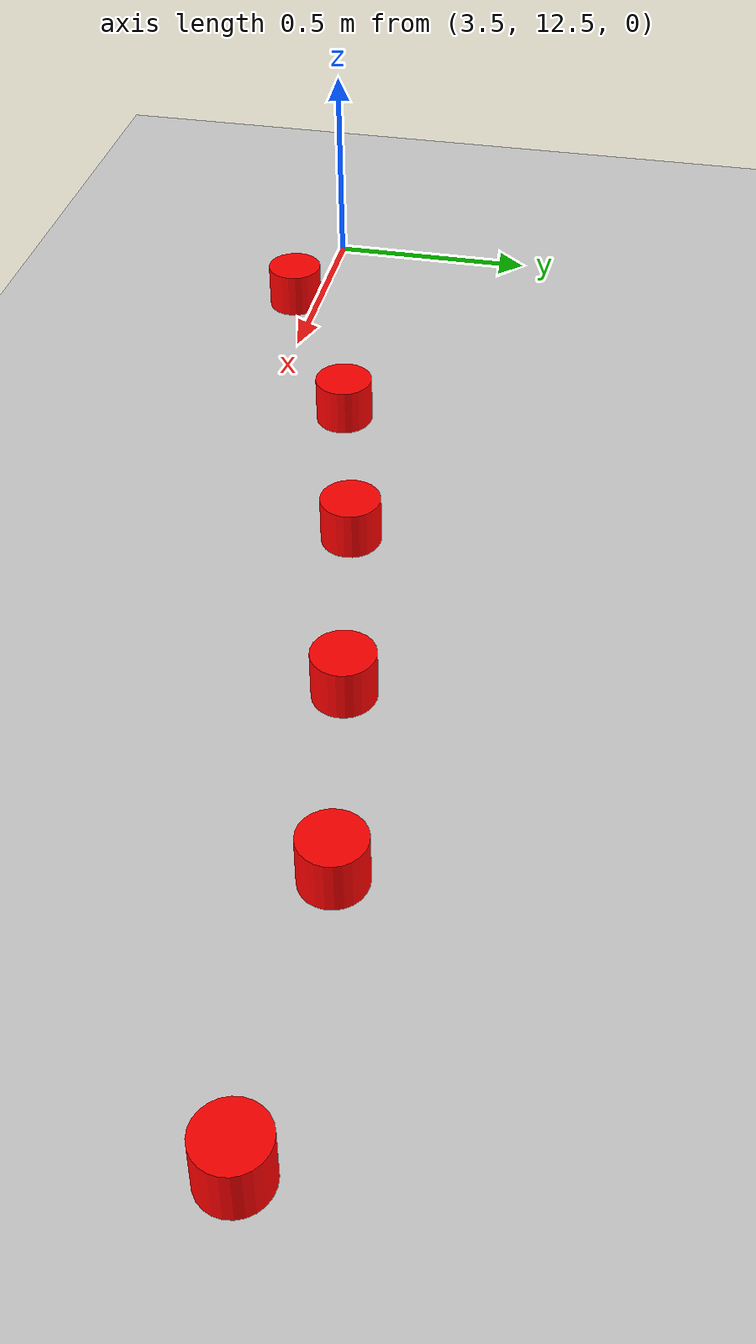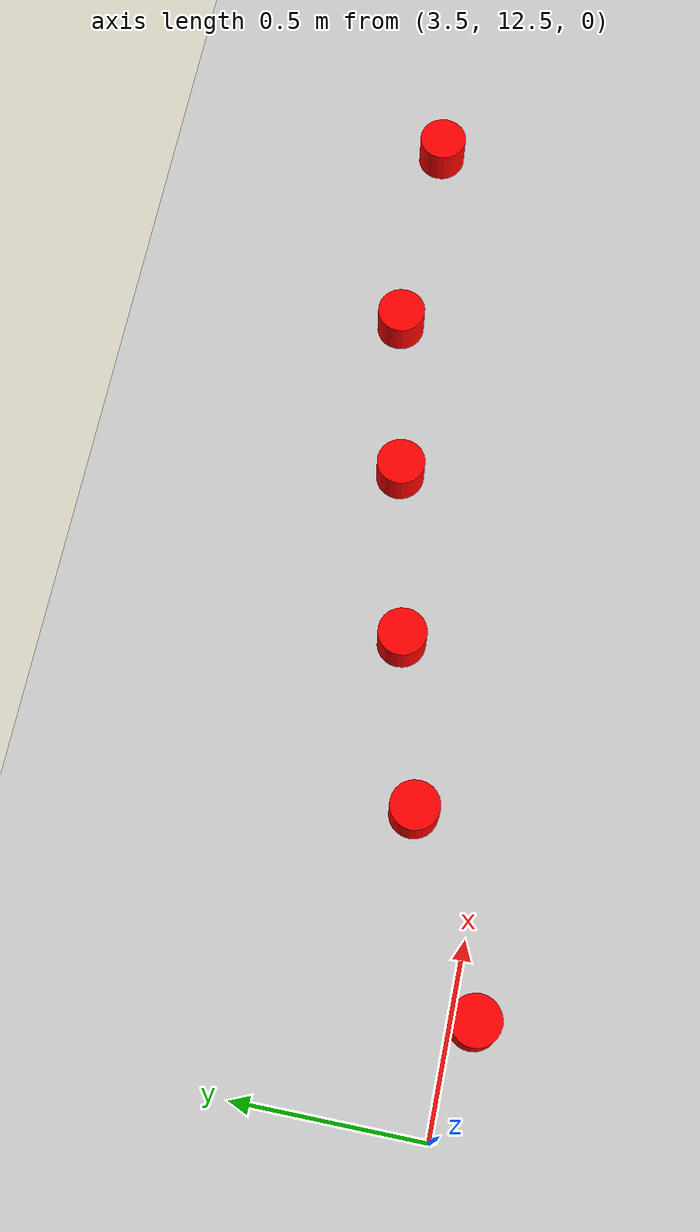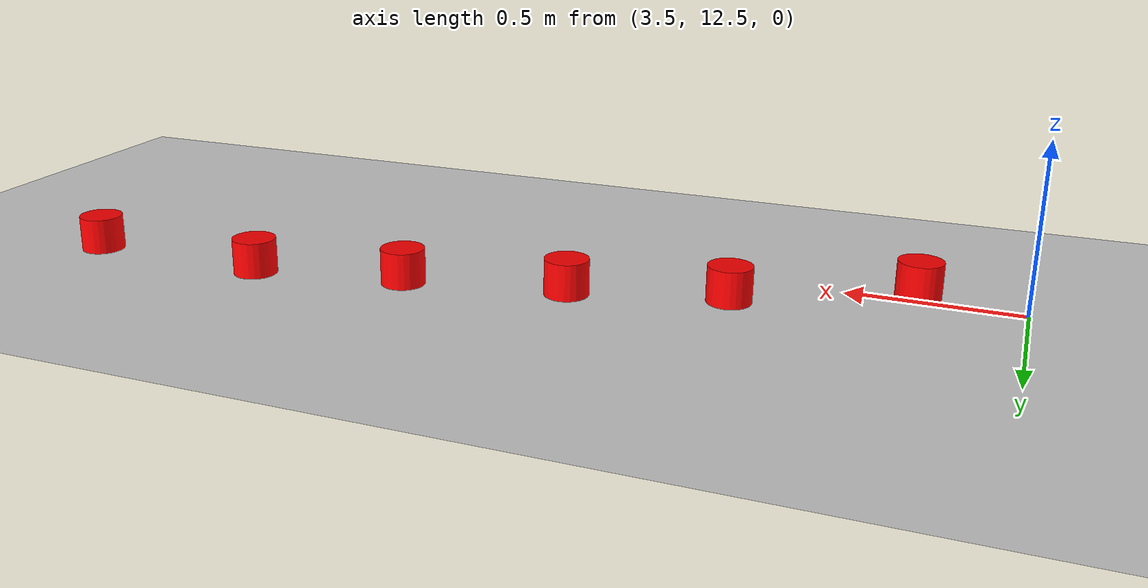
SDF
<sdf version="1.7">
 <world name="default">
  <model name="ground_plane">
   <static>1</static>
   <link name="link">
    <collision name="collision">
     <geometry><plane><normal>0 0 1</normal><size>100 100</size></plane></geometry>
     <surface>
      <contact><collide_bitmask>65535</collide_bitmask></contact>
      <friction><ode><mu>100</mu><mu2>50</mu2></ode></friction>
     </surface>
    </collision>
    <visual name="visual">
     <cast_shadows>0</cast_shadows>
     <geometry><plane><normal>0 0 1</normal><size>100 100</size></plane></geometry>
     <material>
      <script><uri>file://media/materials/scripts/gazebo.material</uri><name>Gazebo/Grey</name></script>
     </material>
    </visual>
   </link>
  </model>
  <model name="latinha_verm_clone_5_clone_0_clone_clone_7_clone_3_clone_3">
   <link name="link">
    <inertial>
     <mass>1</mass>
     <inertia><ixx>0.145833</ixx><ixy>0</ixy><ixz>0</ixz><iyy>0.145833</iyy><iyz>0</iyz><izz>0.125</izz></inertia>
    </inertial>
    <visual name="visual">
     <geometry><cylinder><radius>0.066</radius><length>0.114</length></cylinder></geometry>
     <material>
      <script><name>Gazebo/Gray</name><uri>file://media/materials/scripts/gazebo.material</uri></script>
      <shader type="pixel"><normal_map>__default__</normal_map></shader>
      <ambient>1 0 0 1</ambient>
      <diffuse>1 0 0 1</diffuse>
      <specular>0.1 0.1 0.1 1</specular>
      <emissive>0 0 0 1</emissive>
     </material>
    </visual>
    <collision name="collision">
     <geometry><cylinder><radius>0.05</radius><length>0.1</length></cylinder></geometry>
     <surface>
      <friction>
       <ode><mu>1</mu><mu2>1</mu2><fdir1>0 0 0</fdir1><slip1>0</slip1><slip2>0</slip2></ode>
       <torsional>
        <coefficient>1</coefficient>
        <patch_radius>0</patch_radius>
        <surface_radius>0</surface_radius>
        <use_patch_radius>1</use_patch_radius>
        <ode><slip>0</slip></ode>
       </torsional>
      </friction>
      <bounce><restitution_coefficient>0</restitution_coefficient><threshold>1e+06</threshold></bounce>
      <contact>
       <collide_without_contact>0</collide_without_contact>
       <collide_without_contact_bitmask>1</collide_without_contact_bitmask>
       <collide_bitmask>1</collide_bitmask>
       <ode>
        <soft_cfm>0</soft_cfm>
        <soft_erp>0.2</soft_erp>
        <kp>1e+13</kp>
        <kd>1</kd>
        <max_vel>0.01</max_vel>
        <min_depth>0</min_depth>
       </ode>
       <bullet>
        <split_impulse>1</split_impulse>
        <split_impulse_penetration_threshold>-0.01</split_impulse_penetration_threshold>
        <soft_cfm>0</soft_cfm>
        <soft_erp>0.2</soft_erp>
        <kp>1e+13</kp>
        <kd>1</kd>
       </bullet>
      </contact>
     </surface>
    </collision>
   </link>
   <static>0</static>
   <pose>6.25732 12.9791 0.049996 0 -0 2.9e-05</pose>
  </model>
  <model name="latinha_verm_clone_5_clone_0_clone_clone_7_clone_3_clone_4">
   <link name="link">
    <inertial>
     <mass>1</mass>
     <inertia><ixx>0.145833</ixx><ixy>0</ixy><ixz>0</ixz><iyy>0.145833</iyy><iyz>0</iyz><izz>0.125</izz></inertia>
    </inertial>
    <visual name="visual">
     <geometry><cylinder><radius>0.066</radius><length>0.114</length></cylinder></geometry>
     <material>
      <script><name>Gazebo/Gray</name><uri>file://media/materials/scripts/gazebo.material</uri></script>
      <shader type="pixel"><normal_map>__default__</normal_map></shader>
      <ambient>1 0 0 1</ambient>
      <diffuse>1 0 0 1</diffuse>
      <specular>0.1 0.1 0.1 1</specular>
      <emissive>0 0 0 1</emissive>
     </material>
    </visual>
    <collision name="collision">
     <geometry><cylinder><radius>0.05</radius><length>0.1</length></cylinder></geometry>
     <surface>
      <friction>
       <ode><mu>1</mu><mu2>1</mu2><fdir1>0 0 0</fdir1><slip1>0</slip1><slip2>0</slip2></ode>
       <torsional>
        <coefficient>1</coefficient>
        <patch_radius>0</patch_radius>
        <surface_radius>0</surface_radius>
        <use_patch_radius>1</use_patch_radius>
        <ode><slip>0</slip></ode>
       </torsional>
      </friction>
      <bounce><restitution_coefficient>0</restitution_coefficient><threshold>1e+06</threshold></bounce>
      <contact>
       <collide_without_contact>0</collide_without_contact>
       <collide_without_contact_bitmask>1</collide_without_contact_bitmask>
       <collide_bitmask>1</collide_bitmask>
       <ode>
        <soft_cfm>0</soft_cfm>
        <soft_erp>0.2</soft_erp>
        <kp>1e+13</kp>
        <kd>1</kd>
        <max_vel>0.01</max_vel>
        <min_depth>0</min_depth>
       </ode>
       <bullet>
        <split_impulse>1</split_impulse>
        <split_impulse_penetration_threshold>-0.01</split_impulse_penetration_threshold>
        <soft_cfm>0</soft_cfm>
        <soft_erp>0.2</soft_erp>
        <kp>1e+13</kp>
        <kd>1</kd>
       </bullet>
      </contact>
     </surface>
    </collision>
   </link>
   <static>0</static>
   <pose>5.67675 12.9911 0.049996 0 -0 2.9e-05</pose>
  </model>
  <model name="latinha_verm_clone_5_clone_0_clone_clone_7_clone_3_clone_5">
   <link name="link">
    <inertial>
     <mass>1</mass>
     <inertia><ixx>0.145833</ixx><ixy>0</ixy><ixz>0</ixz><iyy>0.145833</iyy><iyz>0</iyz><izz>0.125</izz></inertia>
    </inertial>
    <visual name="visual">
     <geometry><cylinder><radius>0.066</radius><length>0.114</length></cylinder></geometry>
     <material>
      <script><name>Gazebo/Gray</name><uri>file://media/materials/scripts/gazebo.material</uri></script>
      <shader type="pixel"><normal_map>__default__</normal_map></shader>
      <ambient>1 0 0 1</ambient>
      <diffuse>1 0 0 1</diffuse>
      <specular>0.1 0.1 0.1 1</specular>
      <emissive>0 0 0 1</emissive>
     </material>
    </visual>
    <collision name="collision">
     <geometry><cylinder><radius>0.05</radius><length>0.1</length></cylinder></geometry>
     <surface>
      <friction>
       <ode><mu>1</mu><mu2>1</mu2><fdir1>0 0 0</fdir1><slip1>0</slip1><slip2>0</slip2></ode>
       <torsional>
        <coefficient>1</coefficient>
        <patch_radius>0</patch_radius>
        <surface_radius>0</surface_radius>
        <use_patch_radius>1</use_patch_radius>
        <ode><slip>0</slip></ode>
       </torsional>
      </friction>
      <bounce><restitution_coefficient>0</restitution_coefficient><threshold>1e+06</threshold></bounce>
      <contact>
       <collide_without_contact>0</collide_without_contact>
       <collide_without_contact_bitmask>1</collide_without_contact_bitmask>
       <collide_bitmask>1</collide_bitmask>
       <ode>
        <soft_cfm>0</soft_cfm>
        <soft_erp>0.2</soft_erp>
        <kp>1e+13</kp>
        <kd>1</kd>
        <max_vel>0.01</max_vel>
        <min_depth>0</min_depth>
       </ode>
       <bullet>
        <split_impulse>1</split_impulse>
        <split_impulse_penetration_threshold>-0.01</split_impulse_penetration_threshold>
        <soft_cfm>0</soft_cfm>
        <soft_erp>0.2</soft_erp>
        <kp>1e+13</kp>
        <kd>1</kd>
       </bullet>
      </contact>
     </surface>
    </collision>
   </link>
   <static>0</static>
   <pose>4.74153 12.8082 0.049996 0 -0 2.9e-05</pose>
  </model>
  <model name="latinha_verm_clone_5_clone_0_clone_clone_7_clone_3_clone_6">
   <link name="link">
    <inertial>
     <mass>1</mass>
     <inertia><ixx>0.145833</ixx><ixy>0</ixy><ixz>0</ixz><iyy>0.145833</iyy><iyz>0</iyz><izz>0.125</izz></inertia>
    </inertial>
    <visual name="visual">
     <geometry><cylinder><radius>0.066</radius><length>0.114</length></cylinder></geometry>
     <material>
      <script><name>Gazebo/Gray</name><uri>file://media/materials/scripts/gazebo.material</uri></script>
      <shader type="pixel"><normal_map>__default__</normal_map></shader>
      <ambient>1 0 0 1</ambient>
      <diffuse>1 0 0 1</diffuse>
      <specular>0.1 0.1 0.1 1</specular>
      <emissive>0 0 0 1</emissive>
     </material>
    </visual>
    <collision name="collision">
     <geometry><cylinder><radius>0.05</radius><length>0.1</length></cylinder></geometry>
     <surface>
      <friction>
       <ode><mu>1</mu><mu2>1</mu2><fdir1>0 0 0</fdir1><slip1>0</slip1><slip2>0</slip2></ode>
       <torsional>
        <coefficient>1</coefficient>
        <patch_radius>0</patch_radius>
        <surface_radius>0</surface_radius>
        <use_patch_radius>1</use_patch_radius>
        <ode><slip>0</slip></ode>
       </torsional>
      </friction>
      <bounce><restitution_coefficient>0</restitution_coefficient><threshold>1e+06</threshold></bounce>
      <contact>
       <collide_without_contact>0</collide_without_contact>
       <collide_without_contact_bitmask>1</collide_without_contact_bitmask>
       <collide_bitmask>1</collide_bitmask>
       <ode>
        <soft_cfm>0</soft_cfm>
        <soft_erp>0.2</soft_erp>
        <kp>1e+13</kp>
        <kd>1</kd>
        <max_vel>0.01</max_vel>
        <min_depth>0</min_depth>
       </ode>
       <bullet>
        <split_impulse>1</split_impulse>
        <split_impulse_penetration_threshold>-0.01</split_impulse_penetration_threshold>
        <soft_cfm>0</soft_cfm>
        <soft_erp>0.2</soft_erp>
        <kp>1e+13</kp>
        <kd>1</kd>
       </bullet>
      </contact>
     </surface>
    </collision>
   </link>
   <static>0</static>
   <pose>5.21989 12.9044 0.049996 0 -0 2.9e-05</pose>
  </model>
  <model name="latinha_verm_clone_5_clone_0_clone_clone_7_clone_3_clone_7">
   <link name="link">
    <inertial>
     <mass>1</mass>
     <inertia><ixx>0.145833</ixx><ixy>0</ixy><ixz>0</ixz><iyy>0.145833</iyy><iyz>0</iyz><izz>0.125</izz></inertia>
    </inertial>
    <visual name="visual">
     <geometry><cylinder><radius>0.066</radius><length>0.114</length></cylinder></geometry>
     <material>
      <script><name>Gazebo/Gray</name><uri>file://media/materials/scripts/gazebo.material</uri></script>
      <shader type="pixel"><normal_map>__default__</normal_map></shader>
      <ambient>1 0 0 1</ambient>
      <diffuse>1 0 0 1</diffuse>
      <specular>0.1 0.1 0.1 1</specular>
      <emissive>0 0 0 1</emissive>
     </material>
    </visual>
    <collision name="collision">
     <geometry><cylinder><radius>0.05</radius><length>0.1</length></cylinder></geometry>
     <surface>
      <friction>
       <ode><mu>1</mu><mu2>1</mu2><fdir1>0 0 0</fdir1><slip1>0</slip1><slip2>0</slip2></ode>
       <torsional>
        <coefficient>1</coefficient>
        <patch_radius>0</patch_radius>
        <surface_radius>0</surface_radius>
        <use_patch_radius>1</use_patch_radius>
        <ode><slip>0</slip></ode>
       </torsional>
      </friction>
      <bounce><restitution_coefficient>0</restitution_coefficient><threshold>1e+06</threshold></bounce>
      <contact>
       <collide_without_contact>0</collide_without_contact>
       <collide_without_contact_bitmask>1</collide_without_contact_bitmask>
       <collide_bitmask>1</collide_bitmask>
       <ode>
        <soft_cfm>0</soft_cfm>
        <soft_erp>0.2</soft_erp>
        <kp>1e+13</kp>
        <kd>1</kd>
        <max_vel>0.01</max_vel>
        <min_depth>0</min_depth>
       </ode>
       <bullet>
        <split_impulse>1</split_impulse>
        <split_impulse_penetration_threshold>-0.01</split_impulse_penetration_threshold>
        <soft_cfm>0</soft_cfm>
        <soft_erp>0.2</soft_erp>
        <kp>1e+13</kp>
        <kd>1</kd>
       </bullet>
      </contact>
     </surface>
    </collision>
   </link>
   <static>0</static>
   <pose>3.79971 12.4438 0.049996 0 -0 2.9e-05</pose>
  </model>
  <model name="latinha_verm_clone_5_clone_0_clone_clone_7_clone_3_clone_8">
   <link name="link">
    <inertial>
     <mass>1</mass>
     <inertia><ixx>0.145833</ixx><ixy>0</ixy><ixz>0</ixz><iyy>0.145833</iyy><iyz>0</iyz><izz>0.125</izz></inertia>
    </inertial>
    <visual name="visual">
     <geometry><cylinder><radius>0.066</radius><length>0.114</length></cylinder></geometry>
     <material>
      <script><name>Gazebo/Gray</name><uri>file://media/materials/scripts/gazebo.material</uri></script>
      <shader type="pixel"><normal_map>__default__</normal_map></shader>
      <ambient>1 0 0 1</ambient>
      <diffuse>1 0 0 1</diffuse>
      <specular>0.1 0.1 0.1 1</specular>
      <emissive>0 0 0 1</emissive>
     </material>
    </visual>
    <collision name="collision">
     <geometry><cylinder><radius>0.05</radius><length>0.1</length></cylinder></geometry>
     <surface>
      <friction>
       <ode><mu>1</mu><mu2>1</mu2><fdir1>0 0 0</fdir1><slip1>0</slip1><slip2>0</slip2></ode>
       <torsional>
        <coefficient>1</coefficient>
        <patch_radius>0</patch_radius>
        <surface_radius>0</surface_radius>
        <use_patch_radius>1</use_patch_radius>
        <ode><slip>0</slip></ode>
       </torsional>
      </friction>
      <bounce><restitution_coefficient>0</restitution_coefficient><threshold>1e+06</threshold></bounce>
      <contact>
       <collide_without_contact>0</collide_without_contact>
       <collide_without_contact_bitmask>1</collide_without_contact_bitmask>
       <collide_bitmask>1</collide_bitmask>
       <ode>
        <soft_cfm>0</soft_cfm>
        <soft_erp>0.2</soft_erp>
        <kp>1e+13</kp>
        <kd>1</kd>
        <max_vel>0.01</max_vel>
        <min_depth>0</min_depth>
       </ode>
       <bullet>
        <split_impulse>1</split_impulse>
        <split_impulse_penetration_threshold>-0.01</split_impulse_penetration_threshold>
        <soft_cfm>0</soft_cfm>
        <soft_erp>0.2</soft_erp>
        <kp>1e+13</kp>
        <kd>1</kd>
       </bullet>
      </contact>
     </surface>
    </collision>
   </link>
   <static>0</static>
   <pose>4.29298 12.6891 0.049996 0 -0 2.9e-05</pose>
  </model>
 </world>
</sdf>
